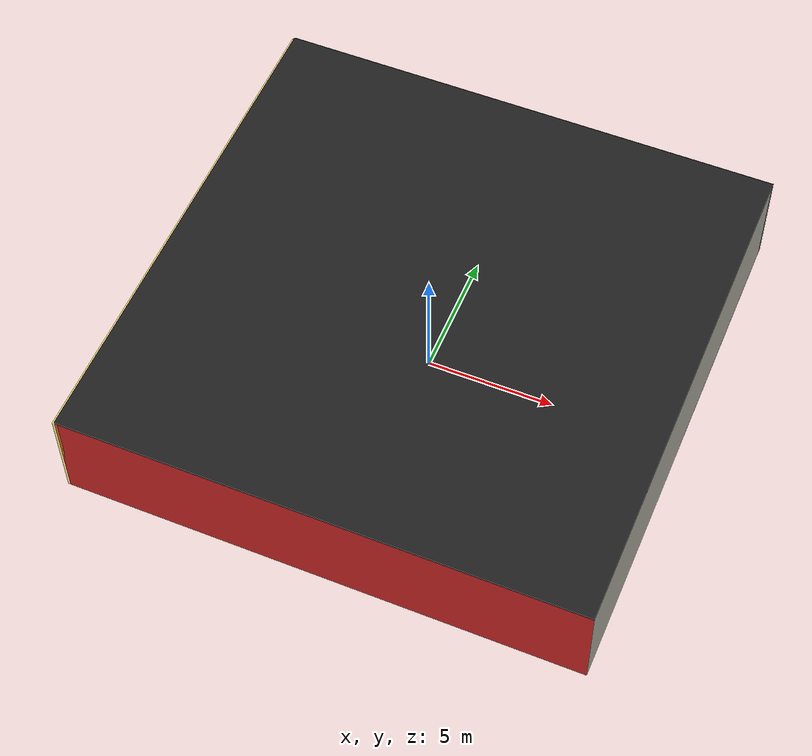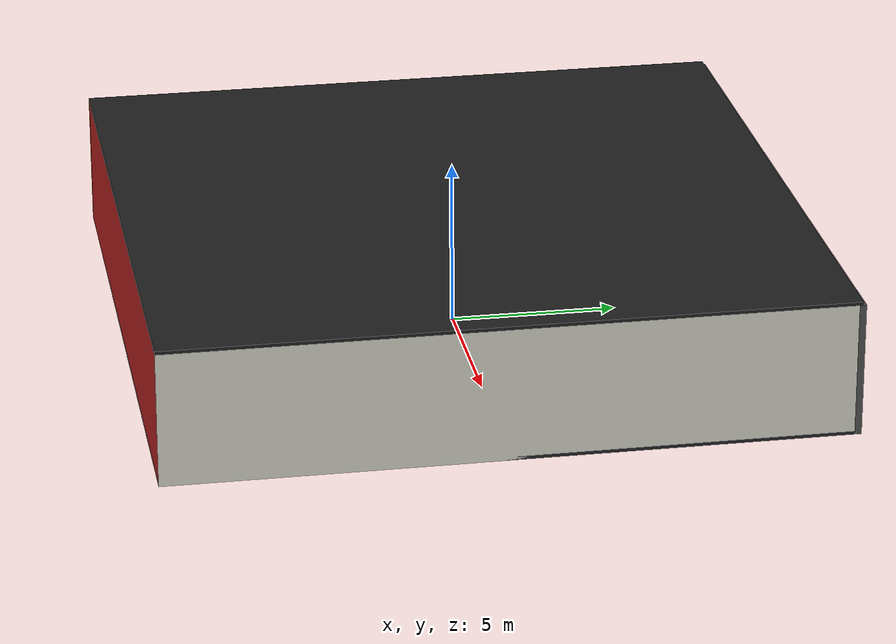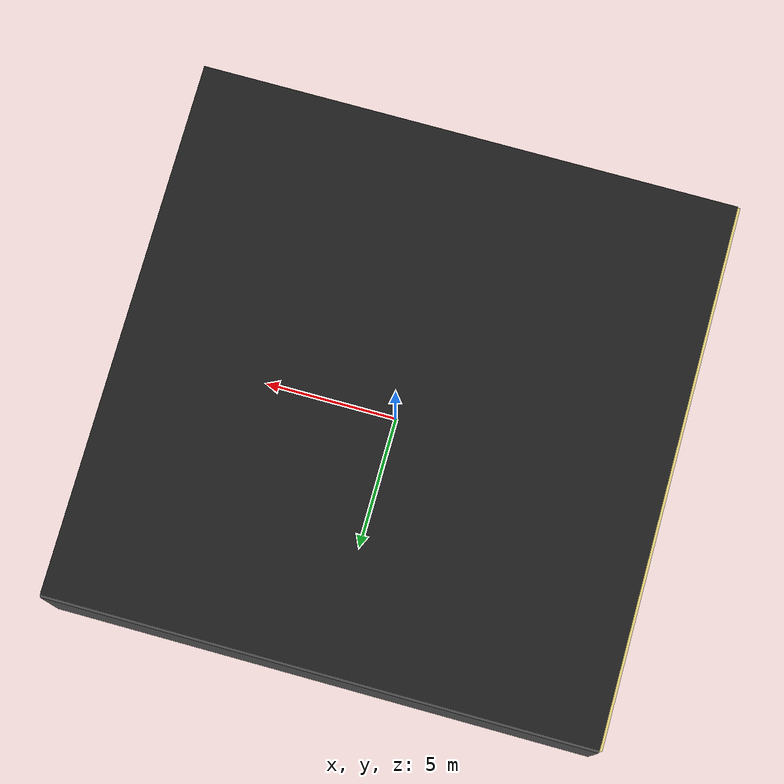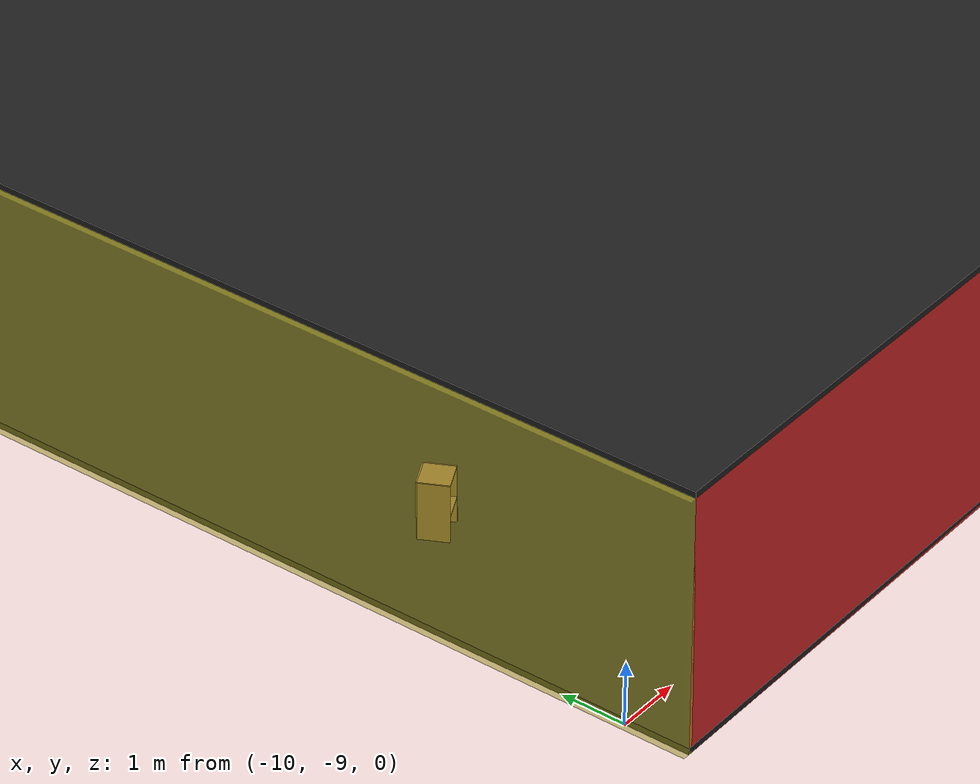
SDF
<sdf version="1.4">
 <world name="default">
  <physics type="ode">
   <max_step_size>0.001</max_step_size>
   <real_time_factor>1</real_time_factor>
   <real_time_update_rate>1000</real_time_update_rate>
   <gravity>0 0 -9.8</gravity>
  </physics>
  <scene><ambient>0.4 0.4 0.4 1</ambient><background>0.7 0.7 0.7 1</background><shadows>1</shadows></scene>
  <model name="Surrounding">
   <static>1</static>
   <link name="Ceiling">
    <collision name="Ceiling_Collision"><geometry><box><size>20 20 0.1</size></box></geometry></collision>
    <visual name="Ceiling_Visual">
     <geometry><box><size>20 20 0.1</size></box></geometry>
     <material>
      <script><uri>file://media/materials/scripts/gazebo.material</uri><name>Gazebo/Black</name></script>
     </material>
    </visual>
    <pose>0 0 4.05 0 0 0</pose>
   </link>
   <link name="Wall_South">
    <collision name="Wall_South_Collision">
     <geometry><box><size>20 0 4</size></box></geometry>
     <pose>0 0 2 0 -0 0</pose>
    </collision>
    <visual name="Wall_South_Visual">
     <pose>0 0 2 0 -0 0</pose>
     <geometry><box><size>20 0 4</size></box></geometry>
     <material>
      <script><uri>file://media/materials/scripts/gazebo.material</uri><name>Gazebo/RedBright</name></script>
     </material>
    </visual>
    <velocity_decay><linear>0</linear><angular>0</angular></velocity_decay>
    <pose>0 -10 0 0 -0 0</pose>
   </link>
   <link name="Wall_East">
    <collision name="Wall_21_Collision">
     <geometry><box><size>20 0 4</size></box></geometry>
     <pose>0 0 2 0 -0 0</pose>
    </collision>
    <visual name="Wall_21_Visual">
     <pose>0 0 2 0 -0 0</pose>
     <geometry><box><size>20 0 4</size></box></geometry>
     <material>
      <script><uri>file://media/materials/scripts/gazebo.material</uri><name>Gazebo/PaintedWall</name></script>
     </material>
    </visual>
    <velocity_decay><linear>0</linear><angular>0</angular></velocity_decay>
    <pose>10 0 0 0 -0 1.5708</pose>
   </link>
   <link name="Wall_North">
    <collision name="Wall_22_Collision">
     <geometry><box><size>20 0.2 4</size></box></geometry>
     <pose>0 0 2 0 -0 0</pose>
    </collision>
    <visual name="Wall_22_Visual">
     <pose>0 0 2 0 -0 0</pose>
     <geometry><box><size>20 0.2 4</size></box></geometry>
     <material>
      <script><uri>file://media/materials/scripts/gazebo.material</uri><name>Gazebo/DarkGrey</name></script>
     </material>
    </visual>
    <velocity_decay><linear>0</linear><angular>0</angular></velocity_decay>
    <pose>0 10 0 0 -0 0</pose>
   </link>
   <link name="Wall_West">
    <collision name="Wall_23_Collision">
     <geometry><box><size>20 0.2 4</size></box></geometry>
     <pose>0 0 2 0 -0 0</pose>
    </collision>
    <visual name="Wall_23_Visual">
     <pose>0 0 2 0 -0 0</pose>
     <geometry><box><size>20 0.2 4</size></box></geometry>
     <material>
      <script>
       <uri>file://media/materials/scripts/gazebo.material</uri>
       <name>Gazebo/YellowTransparent</name>
      </script>
     </material>
    </visual>
    <velocity_decay><linear>0</linear><angular>0</angular></velocity_decay>
    <pose>-10 0 0 0 0 -1.5708</pose>
   </link>
   <link name="Ground_link">
    <collision name="collision">
     <pose>0 0 .05 0 -0 0</pose>
     <geometry><box><size>20 20 0.1</size></box></geometry>
    </collision>
    <visual name="visual">
     <pose>0 0 .05 0 -0 0</pose>
     <geometry><box><size>20 20 0.1</size></box></geometry>
     <material>
      <script><uri>file://media/materials/scripts/gazebo.material</uri><name>Gazebo/FlatBlack</name></script>
     </material>
    </visual>
   </link>
   <static>1</static>
  </model>
  <spherical_coordinates>
   <surface_model>EARTH_WGS84</surface_model>
   <latitude_deg>0</latitude_deg>
   <longitude_deg>0</longitude_deg>
   <elevation>0</elevation>
   <heading_deg>0</heading_deg>
  </spherical_coordinates>
  <light name="lightball_0" type="diffuse">
   <diffuse>0.8 0.8 0.8 1</diffuse>
   <specular>0.2 0.2 0.2 1</specular>
   <attenuation>
    <range>100</range>
    <constant>0.7</constant>
    <linear>0.01</linear>
    <quadratic>0.001</quadratic>
   </attenuation>
   <direction>-0.5 0.1 -0.9</direction>
   <pose>-5.03207955787 -2.00739301984 0.802132282575 0 0 0</pose>
  </light>
  <light name="lightball_1" type="diffuse">
   <diffuse>0.8 0.8 0.8 1</diffuse>
   <specular>0.2 0.2 0.2 1</specular>
   <attenuation>
    <range>100</range>
    <constant>0.7</constant>
    <linear>0.01</linear>
    <quadratic>0.001</quadratic>
   </attenuation>
   <direction>-0.5 0.1 -0.9</direction>
   <pose>-0.150981295078 -4.97591039632 2.01711247441 0 0 0</pose>
  </light>
  <light name="lightball_2" type="diffuse">
   <diffuse>0.8 0.8 0.8 1</diffuse>
   <specular>0.2 0.2 0.2 1</specular>
   <attenuation>
    <range>100</range>
    <constant>0.7</constant>
    <linear>0.01</linear>
    <quadratic>0.001</quadratic>
   </attenuation>
   <direction>-0.5 0.1 -0.9</direction>
   <pose>-1.39678858276 -1.15867161323 3.45866559 0 0 0</pose>
  </light>
  <light name="lightball_3" type="diffuse">
   <diffuse>0.8 0.8 0.8 1</diffuse>
   <specular>0.2 0.2 0.2 1</specular>
   <attenuation>
    <range>100</range>
    <constant>0.7</constant>
    <linear>0.01</linear>
    <quadratic>0.001</quadratic>
   </attenuation>
   <direction>-0.5 0.1 -0.9</direction>
   <pose>2.33120585186 0.0326174977678 0.791418316213 0 0 0</pose>
  </light>
  <light name="lightball_4" type="diffuse">
   <diffuse>0.8 0.8 0.8 1</diffuse>
   <specular>0.2 0.2 0.2 1</specular>
   <attenuation>
    <range>100</range>
    <constant>0.7</constant>
    <linear>0.01</linear>
    <quadratic>0.001</quadratic>
   </attenuation>
   <direction>-0.5 0.1 -0.9</direction>
   <pose>-7.50146622734 -2.61687893794 2.61715526927 0 0 0</pose>
  </light>
  <light name="lightball_5" type="diffuse">
   <diffuse>0.8 0.8 0.8 1</diffuse>
   <specular>0.2 0.2 0.2 1</specular>
   <attenuation>
    <range>100</range>
    <constant>0.7</constant>
    <linear>0.01</linear>
    <quadratic>0.001</quadratic>
   </attenuation>
   <direction>-0.5 0.1 -0.9</direction>
   <pose>8.35957209275 -4.77943769772 2.79679003012 0 0 0</pose>
  </light>
  <light name="lightball_6" type="diffuse">
   <diffuse>0.8 0.8 0.8 1</diffuse>
   <specular>0.2 0.2 0.2 1</specular>
   <attenuation>
    <range>100</range>
    <constant>0.7</constant>
    <linear>0.01</linear>
    <quadratic>0.001</quadratic>
   </attenuation>
   <direction>-0.5 0.1 -0.9</direction>
   <pose>3.83899772745 -6.34702959166 0.976400394826 0 0 0</pose>
  </light>
  <light name="lightball_7" type="diffuse">
   <diffuse>0.8 0.8 0.8 1</diffuse>
   <specular>0.2 0.2 0.2 1</specular>
   <attenuation>
    <range>100</range>
    <constant>0.7</constant>
    <linear>0.01</linear>
    <quadratic>0.001</quadratic>
   </attenuation>
   <direction>-0.5 0.1 -0.9</direction>
   <pose>-8.31904378895 -6.96303676183 2.79975935958 0 0 0</pose>
  </light>
  <light name="lightball_8" type="diffuse">
   <diffuse>0.8 0.8 0.8 1</diffuse>
   <specular>0.2 0.2 0.2 1</specular>
   <attenuation>
    <range>100</range>
    <constant>0.7</constant>
    <linear>0.01</linear>
    <quadratic>0.001</quadratic>
   </attenuation>
   <direction>-0.5 0.1 -0.9</direction>
   <pose>-3.85106571515 -4.06144720167 3.32541067306 0 0 0</pose>
  </light>
  <light name="lightball_9" type="diffuse">
   <diffuse>0.8 0.8 0.8 1</diffuse>
   <specular>0.2 0.2 0.2 1</specular>
   <attenuation>
    <range>100</range>
    <constant>0.7</constant>
    <linear>0.01</linear>
    <quadratic>0.001</quadratic>
   </attenuation>
   <direction>-0.5 0.1 -0.9</direction>
   <pose>4.71541763646 3.62174541567 1.40464260226 0 0 0</pose>
  </light>
  <include><uri>model://cabinet</uri><pose>-8.29601311083 -4.63724632551 0 0 0 2.04045602914</pose></include>
  <include><uri>model://cabinet</uri><pose>-4.16555240974 -1.58027808497 0 0 0 1.69499605211</pose></include>
  <include><uri>model://cabinet</uri><pose>-1.10287727323 6.95008775502 0 0 0 1.07649168565</pose></include>
  <include><uri>model://cabinet</uri><pose>3.34970393267 1.95637811976 0 0 0 1.93339915237</pose></include>
  <include><uri>model://table</uri><pose>7.28057969365 0.820185071554 0 0 0 0.467101676315</pose></include>
 </world>
</sdf>

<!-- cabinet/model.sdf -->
<sdf version="1.5">
  <model name="cabinet">
    <static>true</static>
    <link name="cabinet_bottom_plate">
      <inertial>
        <pose>0 0 -1 0 0 0</pose>
        <inertia>
          <ixx>2.050000</ixx>
          <ixy>0</ixy>
          <ixz>0</ixz>
          <iyy>2.050000</iyy>
          <iyz>0</iyz>
          <izz>2.050000</izz>
        </inertia>
        <mass>25.000000</mass>
      </inertial>
      <collision name="cabinet_bottom_plate_geom">
        <pose>0 0 0.010000 0 0 0</pose>
        <geometry>
          <box>
            <size>0.450000 0.450000 0.020000</size>
          </box>
        </geometry>
      </collision>
      <visual name="cabinet_bottom_plate_geom_visual">
        <pose>0 0 0.010000 0 0 0</pose>
        <geometry>
          <box>
            <size>0.450000 0.450000 0.020000</size>
          </box>
        </geometry>
        <material>
          <script>
            <uri>model://media/materials/scripts/gazebo.material</uri>
            <name>Gazebo/Wood</name>
          </script>
        </material>
      </visual>
      <collision name="cabinet_bottom_plate_geom_cabinet_back_plate">
        <pose>0.235000 0 0.510000 0 0 0</pose>
        <geometry>
          <box>
            <size>0.020000 0.450000 1.020000</size>
          </box>
        </geometry>
      </collision>
      <visual name="cabinet_bottom_plate_geom_cabinet_back_plate_visual">
        <pose>0.235000 0 0.510000 0 0 0</pose>
        <geometry>
          <box>
            <size>0.020000 0.450000 1.020000</size>
          </box>
        </geometry>
        <material>
          <script>
            <uri>model://media/materials/scripts/gazebo.material</uri>
            <name>Gazebo/Wood</name>
          </script>
        </material>
      </visual>
      <collision name="cabinet_bottom_plate_geom_cabinet_left_plate">
        <pose>0 0.235000 0.510000 0 0 0</pose>
        <geometry>
          <box>
            <size>0.450000 0.020000 1.020000</size>
          </box>
        </geometry>
      </collision>
      <visual name="cabinet_bottom_plate_geom_cabinet_left_plate_visual">
        <pose>0 0.235000 0.510000 0 0 0</pose>
        <geometry>
          <box>
            <size>0.450000 0.020000 1.020000</size>
          </box>
        </geometry>
        <material>
          <script>
            <uri>model://media/materials/scripts/gazebo.material</uri>
            <name>Gazebo/Wood</name>
          </script>
        </material>
      </visual>
      <collision name="cabinet_bottom_plate_geom_cabinet_middle_plate">
        <pose>0 0 0.510000 0 0 0</pose>
        <geometry>
          <box>
            <size>0.450000 0.450000 0.020000</size>
          </box>
        </geometry>
      </collision>
      <visual name="cabinet_bottom_plate_geom_cabinet_middle_plate_visual">
        <pose>0 0 0.510000 0 0 0</pose>
        <geometry>
          <box>
            <size>0.450000 0.450000 0.020000</size>
          </box>
        </geometry>
        <material>
          <script>
            <uri>model://media/materials/scripts/gazebo.material</uri>
            <name>Gazebo/Wood</name>
          </script>
        </material>
      </visual>
      <collision name="cabinet_bottom_plate_geom_cabinet_right_plate">
        <pose>0 -0.235000 0.510000 0 0 0</pose>
        <geometry>
          <box>
            <size>0.450000 0.020000 1.020000</size>
          </box>
        </geometry>
      </collision>
      <visual name="cabinet_bottom_plate_geom_cabinet_right_plate_visual">
        <pose>0 -0.235000 0.510000 0 0 0</pose>
        <geometry>
          <box>
            <size>0.450000 0.020000 1.020000</size>
          </box>
        </geometry>
        <material>
          <script>
            <uri>model://media/materials/scripts/gazebo.material</uri>
            <name>Gazebo/Wood</name>
          </script>
        </material>
      </visual>
      <collision name="cabinet_bottom_plate_geom_cabinet_top_plate">
        <pose>0 0 1.010000 0 0 0</pose>
        <geometry>
          <box>
            <size>0.450000 0.450000 0.020000</size>
          </box>
        </geometry>
      </collision>
      <visual name="cabinet_bottom_plate_geom_cabinet_top_plate_visual">
        <pose>0 0 1.010000 0 0 0</pose>
        <geometry>
          <box>
            <size>0.450000 0.450000 0.020000</size>
          </box>
        </geometry>
        <material>
          <script>
            <uri>model://media/materials/scripts/gazebo.material</uri>
            <name>Gazebo/Wood</name>
          </script>
        </material>
      </visual>
    </link>
  </model>
</sdf>

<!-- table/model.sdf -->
<sdf version="1.5">
  <model name="table">
    <static>true</static>
    <link name="link">
      <collision name="surface">
        <pose>0 0 1.0 0 0 0</pose>
        <geometry>
          <box>
            <size>1.5 0.8 0.03</size>
          </box>
        </geometry>
        <surface>
          <friction>
            <ode>
              <mu>0.6</mu>
              <mu2>0.6</mu2>
            </ode>
          </friction>
        </surface>
      </collision>
      <visual name="visual1">
        <pose>0 0 1.0 0 0 0</pose>
        <geometry>
          <box>
            <size>1.5 0.8 0.03</size>
          </box>
        </geometry>
        <material>
          <script>
            <uri>model://media/materials/scripts/gazebo.material</uri>
            <name>Gazebo/Wood</name>
          </script>
        </material>
      </visual>
      <collision name="front_left_leg">
        <pose>0.68 0.38 0.5 0 0 0</pose>
        <geometry>
          <cylinder>
            <radius>0.02</radius>
            <length>1.0</length>
          </cylinder>
        </geometry>
      </collision>
      <visual name="front_left_leg">
        <pose>0.68 0.38 0.5 0 0 0</pose>
        <geometry>
          <cylinder>
            <radius>0.02</radius>
            <length>1.0</length>
          </cylinder>
        </geometry>
        <material>
          <script>
            <uri>model://media/materials/scripts/gazebo.material</uri>
            <name>Gazebo/Grey</name>
          </script>
        </material>
      </visual>
      <collision name="front_right_leg">
        <pose>0.68 -0.38 0.5 0 0 0</pose>
        <geometry>
          <cylinder>
            <radius>0.02</radius>
            <length>1.0</length>
          </cylinder>
        </geometry>
      </collision>
      <visual name="front_right_leg">
        <pose>0.68 -0.38 0.5 0 0 0</pose>
        <geometry>
          <cylinder>
            <radius>0.02</radius>
            <length>1.0</length>
          </cylinder>
        </geometry>
        <material>
          <script>
            <uri>model://media/materials/scripts/gazebo.material</uri>
            <name>Gazebo/Grey</name>
          </script>
        </material>
      </visual>
      <collision name="back_right_leg">
        <pose>-0.68 -0.38 0.5 0 0 0</pose>
        <geometry>
          <cylinder>
            <radius>0.02</radius>
            <length>1.0</length>
          </cylinder>
        </geometry>
      </collision>
      <visual name="back_right_leg">
        <pose>-0.68 -0.38 0.5 0 0 0</pose>
        <geometry>
          <cylinder>
            <radius>0.02</radius>
            <length>1.0</length>
          </cylinder>
        </geometry>
        <material>
          <script>
            <uri>model://media/materials/scripts/gazebo.material</uri>
            <name>Gazebo/Grey</name>
          </script>
        </material>
      </visual>
      <collision name="back_left_leg">
        <pose>-0.68 0.38 0.5 0 0 0</pose>
        <geometry>
          <cylinder>
            <radius>0.02</radius>
            <length>1.0</length>
          </cylinder>
        </geometry>
      </collision>
      <visual name="back_left_leg">
        <pose>-0.68 0.38 0.5 0 0 0</pose>
        <geometry>
          <cylinder>
            <radius>0.02</radius>
            <length>1.0</length>
          </cylinder>
        </geometry>
        <material>
          <script>
            <uri>model://media/materials/scripts/gazebo.material</uri>
            <name>Gazebo/Grey</name>
          </script>
        </material>
      </visual>
    </link>
  </model>
</sdf>
